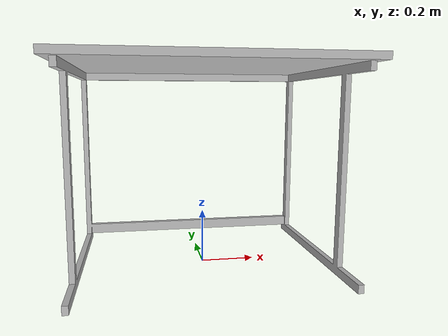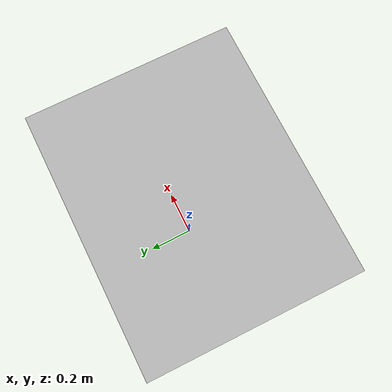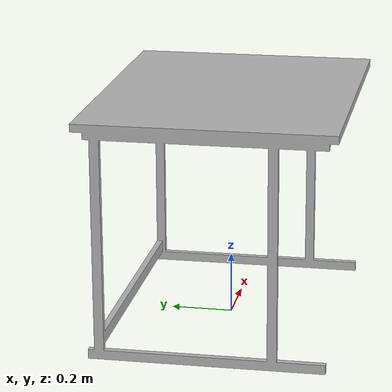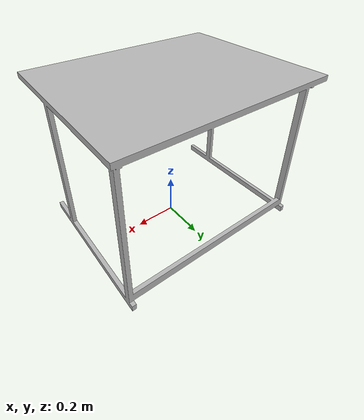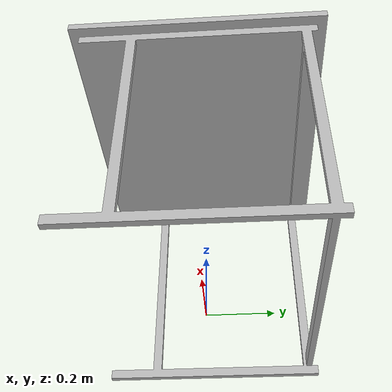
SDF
<?xml version="1.0"?>
<sdf version="1.4">
<model name="stul_100">
	<pose>0 0 0 0 0 0</pose>
	<static>true</static>
	<link name="stul_100_collision">
		<collision name="stul_100_collision">
		<geometry>
			<mesh>
				<uri>model://stul_100/meshes/model.dae</uri>

			</mesh>
		</geometry>
		</collision>
	<visual name="stul_100_mesh">
	<cast_shadows>false</cast_shadows>
		<geometry>
			<mesh>
				<uri> model://stul_100/meshes/model.dae</uri>

			</mesh>
		</geometry>
		<material>
		<script>
			<uri> model://stul_100/material/scripts</uri>
			<uri> model://stul_100/material/textures</uri>
			<name>stul_100/Diffuse</name>
		</script>
		</material>

	</visual>
</link>
</model>
</sdf>
